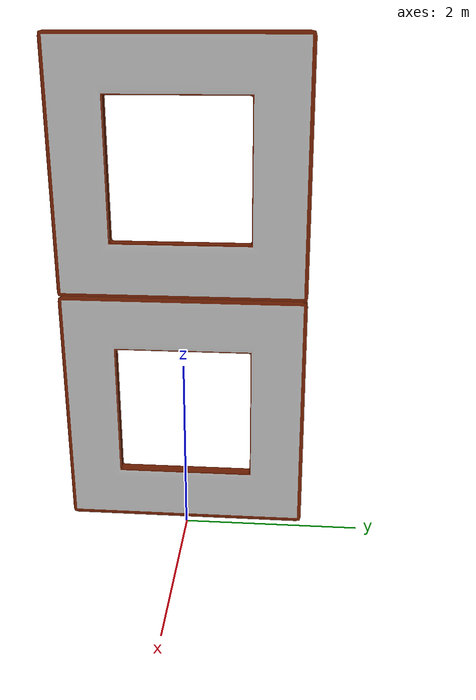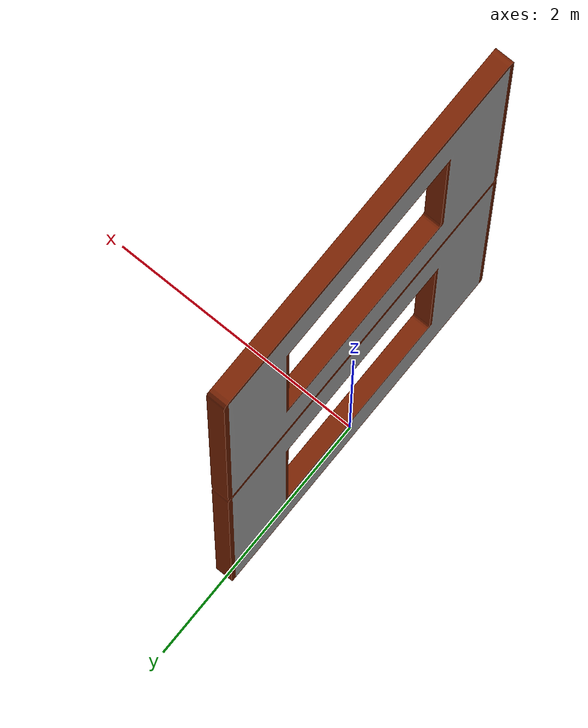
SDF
<sdf version="1.9">
  <model name="orange_double_gate">
    <static>true</static>

    <link name="link">
      <visual name="visual">
        <geometry>
          <mesh>
            <uri>model://orange_double_gate/meshes/orange_double_gate.dae</uri>
          </mesh>
        </geometry>
      </visual>

      <collision name="collision">
        <geometry>
          <mesh>
            <uri>model://orange_double_gate/meshes/orange_double_gate.dae</uri>
          </mesh>
        </geometry>
      </collision>
    </link>
  </model>
</sdf>
